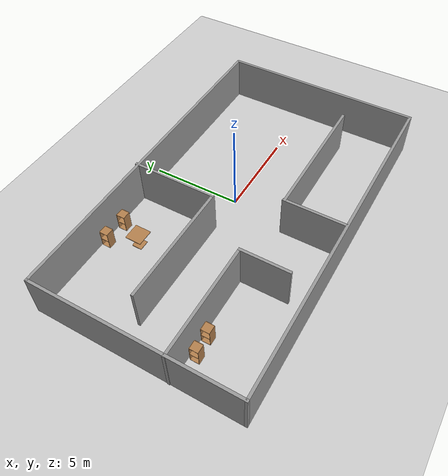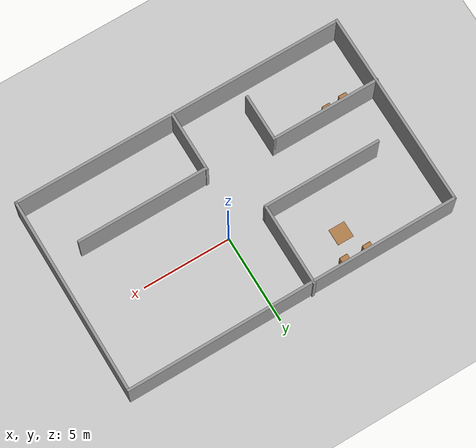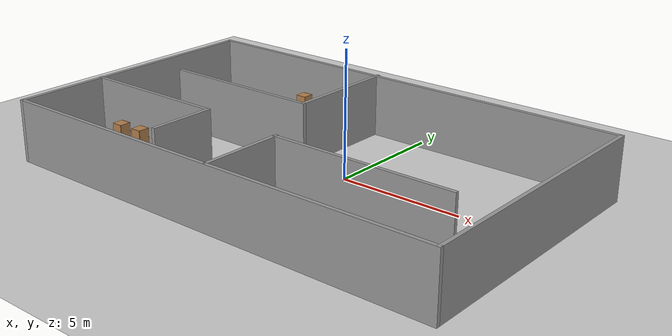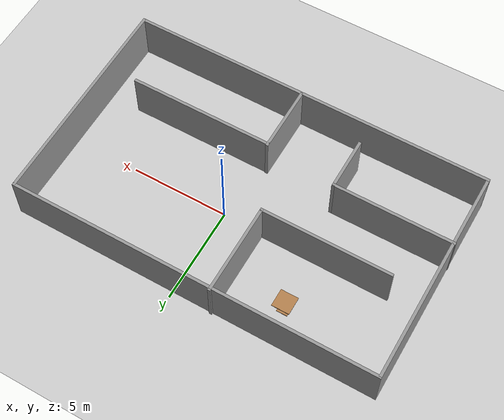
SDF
<sdf version="1.7">
 <world name="default">
  <model name="ground_plane">
   <static>1</static>
   <link name="link">
    <collision name="collision">
     <geometry><plane><normal>0 0 1</normal><size>100 100</size></plane></geometry>
     <surface><friction><ode><mu>100</mu><mu2>50</mu2></ode></friction></surface>
    </collision>
    <visual name="visual">
     <geometry><plane><normal>0 0 1</normal><size>100 100</size></plane></geometry>
     <material>
      <script><uri>file://media/materials/scripts/gazebo.material</uri><name>Gazebo/Grey</name></script>
     </material>
    </visual>
   </link>
  </model>
  <model name="room">
   <pose>-0.972666 -0.903877 0 0 -0 0</pose>
   <link name="Wall_66">
    <collision name="Wall_66_Collision">
     <geometry><box><size>19 0.15 2.5</size></box></geometry>
     <pose>0 0 1.25 0 -0 0</pose>
    </collision>
    <visual name="Wall_66_Visual">
     <pose>0 0 1.25 0 -0 0</pose>
     <geometry><box><size>19 0.15 2.5</size></box></geometry>
     <material>
      <script><uri>file://media/materials/scripts/gazebo.material</uri><name>Gazebo/Grey</name></script>
      <ambient>1 1 1 1</ambient>
     </material>
     <meta><layer>0</layer></meta>
    </visual>
    <pose>0.013921 5.50955 0 0 -0 0</pose>
   </link>
   <link name="Wall_67">
    <collision name="Wall_67_Collision">
     <geometry><box><size>11.25 0.15 2.5</size></box></geometry>
     <pose>0 0 1.25 0 -0 0</pose>
    </collision>
    <visual name="Wall_67_Visual">
     <pose>0 0 1.25 0 -0 0</pose>
     <geometry><box><size>11.25 0.15 2.5</size></box></geometry>
     <material>
      <script><uri>file://media/materials/scripts/gazebo.material</uri><name>Gazebo/Grey</name></script>
      <ambient>1 1 1 1</ambient>
     </material>
     <meta><layer>0</layer></meta>
    </visual>
    <pose>9.43892 -0.040455 0 0 -0 -1.5708</pose>
   </link>
   <link name="Wall_68">
    <collision name="Wall_68_Collision">
     <geometry><box><size>19 0.15 2.5</size></box></geometry>
     <pose>0 0 1.25 0 -0 0</pose>
    </collision>
    <visual name="Wall_68_Visual">
     <pose>0 0 1.25 0 -0 0</pose>
     <geometry><box><size>19 0.15 2.5</size></box></geometry>
     <material>
      <script><uri>file://media/materials/scripts/gazebo.material</uri><name>Gazebo/Grey</name></script>
      <ambient>1 1 1 1</ambient>
     </material>
     <meta><layer>0</layer></meta>
    </visual>
    <pose>0.013921 -5.59046 0 0 -0 3.14159</pose>
   </link>
   <link name="Wall_69">
    <collision name="Wall_69_Collision">
     <geometry><box><size>11.25 0.15 2.5</size></box></geometry>
     <pose>0 0 1.25 0 -0 0</pose>
    </collision>
    <visual name="Wall_69_Visual">
     <pose>0 0 1.25 0 -0 0</pose>
     <geometry><box><size>11.25 0.15 2.5</size></box></geometry>
     <material>
      <script><uri>file://media/materials/scripts/gazebo.material</uri><name>Gazebo/Grey</name></script>
      <ambient>1 1 1 1</ambient>
     </material>
     <meta><layer>0</layer></meta>
    </visual>
    <pose>-9.41108 -0.040455 0 0 -0 1.5708</pose>
   </link>
   <link name="Wall_71">
    <collision name="Wall_71_Collision">
     <geometry><box><size>4.75 0.15 2.5</size></box></geometry>
     <pose>0 0 1.25 0 -0 0</pose>
    </collision>
    <visual name="Wall_71_Visual">
     <pose>0 0 1.25 0 -0 0</pose>
     <geometry><box><size>4.75 0.15 2.5</size></box></geometry>
     <material>
      <script><uri>file://media/materials/scripts/gazebo.material</uri><name>Gazebo/Grey</name></script>
      <ambient>1 1 1 1</ambient>
     </material>
     <meta><layer>0</layer></meta>
    </visual>
    <pose>-1.11769 3.29046 0 0 -0 -1.5708</pose>
   </link>
   <link name="Wall_72">
    <collision name="Wall_72_Collision">
     <geometry><box><size>6.75 0.15 2.5</size></box></geometry>
     <pose>0 0 1.25 0 -0 0</pose>
    </collision>
    <visual name="Wall_72_Visual">
     <pose>0 0 1.25 0 -0 0</pose>
     <geometry><box><size>6.75 0.15 2.5</size></box></geometry>
     <material>
      <script><uri>file://media/materials/scripts/gazebo.material</uri><name>Gazebo/Grey</name></script>
      <ambient>1 1 1 1</ambient>
     </material>
     <meta><layer>0</layer></meta>
    </visual>
    <pose>-4.41769 0.990456 0 0 -0 3.14159</pose>
   </link>
   <link name="Wall_79">
    <collision name="Wall_79_Collision">
     <geometry><box><size>3.47722 0.15 2.5</size></box></geometry>
     <pose>0 0 1.25 0 -0 0</pose>
    </collision>
    <visual name="Wall_79_Visual">
     <pose>0 0 1.25 0 -0 0</pose>
     <geometry><box><size>3.47722 0.15 2.5</size></box></geometry>
     <material>
      <script><uri>file://media/materials/scripts/gazebo.material</uri><name>Gazebo/Grey</name></script>
      <ambient>1 1 1 1</ambient>
     </material>
     <meta><layer>0</layer></meta>
    </visual>
    <pose>0.391784 -3.86799 0 0 -0 1.5708</pose>
   </link>
   <link name="Wall_80">
    <collision name="Wall_80_Collision">
     <geometry><box><size>7.5 0.15 2.5</size></box></geometry>
     <pose>0 0 1.25 0 -0 0</pose>
    </collision>
    <visual name="Wall_80_Visual">
     <pose>0 0 1.25 0 -0 0</pose>
     <geometry><box><size>7.5 0.15 2.5</size></box></geometry>
     <material>
      <script><uri>file://media/materials/scripts/gazebo.material</uri><name>Gazebo/Grey</name></script>
      <ambient>1 1 1 1</ambient>
     </material>
     <meta><layer>0</layer></meta>
    </visual>
    <pose>4.06678 -2.24484 0 0 -0 0</pose>
   </link>
   <link name="Wall_85">
    <collision name="Wall_85_Collision">
     <geometry><box><size>6.25 0.15 2.5</size></box></geometry>
     <pose>0 0 1.25 0 -0 0</pose>
    </collision>
    <visual name="Wall_85_Visual">
     <pose>0 0 1.25 0 -0 0</pose>
     <geometry><box><size>6.25 0.15 2.5</size></box></geometry>
     <material>
      <script><uri>file://media/materials/scripts/gazebo.material</uri><name>Gazebo/Grey</name></script>
      <ambient>1 1 1 1</ambient>
     </material>
     <meta><layer>0</layer></meta>
    </visual>
    <pose>-6.38892 -1.80969 0 0 -0 0</pose>
   </link>
   <link name="Wall_86">
    <collision name="Wall_86_Collision">
     <geometry><box><size>2.75 0.15 2.5</size></box></geometry>
     <pose>0 0 1.25 0 -0 0</pose>
    </collision>
    <visual name="Wall_86_Visual">
     <pose>0 0 1.25 0 -0 0</pose>
     <geometry><box><size>2.75 0.15 2.5</size></box></geometry>
     <material>
      <script><uri>file://media/materials/scripts/gazebo.material</uri><name>Gazebo/Grey</name></script>
      <ambient>1 1 1 1</ambient>
     </material>
     <meta><layer>0</layer></meta>
    </visual>
    <pose>-3.33892 -3.10969 0 0 -0 -1.5708</pose>
   </link>
   <static>1</static>
  </model>
  <model name="cabinet">
   <static>1</static>
   <link name="cabinet_bottom_plate">
    <inertial>
     <pose>0 0 -1 0 -0 0</pose>
     <inertia><ixx>2.05</ixx><ixy>0</ixy><ixz>0</ixz><iyy>2.05</iyy><iyz>0</iyz><izz>2.05</izz></inertia>
     <mass>25</mass>
    </inertial>
    <collision name="cabinet_bottom_plate_geom">
     <pose>0 0 0.01 0 -0 0</pose>
     <geometry><box><size>0.45 0.45 0.02</size></box></geometry>
    </collision>
    <visual name="cabinet_bottom_plate_geom_visual">
     <pose>0 0 0.01 0 -0 0</pose>
     <geometry><box><size>0.45 0.45 0.02</size></box></geometry>
     <material>
      <script><uri>file://media/materials/scripts/gazebo.material</uri><name>Gazebo/Wood</name></script>
     </material>
    </visual>
    <collision name="cabinet_bottom_plate_geom_cabinet_back_plate">
     <pose>0.235 0 0.51 0 -0 0</pose>
     <geometry><box><size>0.02 0.45 1.02</size></box></geometry>
    </collision>
    <visual name="cabinet_bottom_plate_geom_cabinet_back_plate_visual">
     <pose>0.235 0 0.51 0 -0 0</pose>
     <geometry><box><size>0.02 0.45 1.02</size></box></geometry>
     <material>
      <script><uri>file://media/materials/scripts/gazebo.material</uri><name>Gazebo/Wood</name></script>
     </material>
    </visual>
    <collision name="cabinet_bottom_plate_geom_cabinet_left_plate">
     <pose>0 0.235 0.51 0 -0 0</pose>
     <geometry><box><size>0.45 0.02 1.02</size></box></geometry>
    </collision>
    <visual name="cabinet_bottom_plate_geom_cabinet_left_plate_visual">
     <pose>0 0.235 0.51 0 -0 0</pose>
     <geometry><box><size>0.45 0.02 1.02</size></box></geometry>
     <material>
      <script><uri>file://media/materials/scripts/gazebo.material</uri><name>Gazebo/Wood</name></script>
     </material>
    </visual>
    <collision name="cabinet_bottom_plate_geom_cabinet_middle_plate">
     <pose>0 0 0.51 0 -0 0</pose>
     <geometry><box><size>0.45 0.45 0.02</size></box></geometry>
    </collision>
    <visual name="cabinet_bottom_plate_geom_cabinet_middle_plate_visual">
     <pose>0 0 0.51 0 -0 0</pose>
     <geometry><box><size>0.45 0.45 0.02</size></box></geometry>
     <material>
      <script><uri>file://media/materials/scripts/gazebo.material</uri><name>Gazebo/Wood</name></script>
     </material>
    </visual>
    <collision name="cabinet_bottom_plate_geom_cabinet_right_plate">
     <pose>0 -0.235 0.51 0 -0 0</pose>
     <geometry><box><size>0.45 0.02 1.02</size></box></geometry>
    </collision>
    <visual name="cabinet_bottom_plate_geom_cabinet_right_plate_visual">
     <pose>0 -0.235 0.51 0 -0 0</pose>
     <geometry><box><size>0.45 0.02 1.02</size></box></geometry>
     <material>
      <script><uri>file://media/materials/scripts/gazebo.material</uri><name>Gazebo/Wood</name></script>
     </material>
    </visual>
    <collision name="cabinet_bottom_plate_geom_cabinet_top_plate">
     <pose>0 0 1.01 0 -0 0</pose>
     <geometry><box><size>0.45 0.45 0.02</size></box></geometry>
    </collision>
    <visual name="cabinet_bottom_plate_geom_cabinet_top_plate_visual">
     <pose>0 0 1.01 0 -0 0</pose>
     <geometry><box><size>0.45 0.45 0.02</size></box></geometry>
     <material>
      <script><uri>file://media/materials/scripts/gazebo.material</uri><name>Gazebo/Wood</name></script>
     </material>
    </visual>
   </link>
   <pose>-4.31975 4.20897 0 0 -0 0</pose>
  </model>
  <model name="cabinet_0">
   <static>1</static>
   <link name="cabinet_bottom_plate">
    <inertial>
     <pose>0 0 -1 0 -0 0</pose>
     <inertia><ixx>2.05</ixx><ixy>0</ixy><ixz>0</ixz><iyy>2.05</iyy><iyz>0</iyz><izz>2.05</izz></inertia>
     <mass>25</mass>
    </inertial>
    <collision name="cabinet_bottom_plate_geom">
     <pose>0 0 0.01 0 -0 0</pose>
     <geometry><box><size>0.45 0.45 0.02</size></box></geometry>
    </collision>
    <visual name="cabinet_bottom_plate_geom_visual">
     <pose>0 0 0.01 0 -0 0</pose>
     <geometry><box><size>0.45 0.45 0.02</size></box></geometry>
     <material>
      <script><uri>file://media/materials/scripts/gazebo.material</uri><name>Gazebo/Wood</name></script>
     </material>
    </visual>
    <collision name="cabinet_bottom_plate_geom_cabinet_back_plate">
     <pose>0.235 0 0.51 0 -0 0</pose>
     <geometry><box><size>0.02 0.45 1.02</size></box></geometry>
    </collision>
    <visual name="cabinet_bottom_plate_geom_cabinet_back_plate_visual">
     <pose>0.235 0 0.51 0 -0 0</pose>
     <geometry><box><size>0.02 0.45 1.02</size></box></geometry>
     <material>
      <script><uri>file://media/materials/scripts/gazebo.material</uri><name>Gazebo/Wood</name></script>
     </material>
    </visual>
    <collision name="cabinet_bottom_plate_geom_cabinet_left_plate">
     <pose>0 0.235 0.51 0 -0 0</pose>
     <geometry><box><size>0.45 0.02 1.02</size></box></geometry>
    </collision>
    <visual name="cabinet_bottom_plate_geom_cabinet_left_plate_visual">
     <pose>0 0.235 0.51 0 -0 0</pose>
     <geometry><box><size>0.45 0.02 1.02</size></box></geometry>
     <material>
      <script><uri>file://media/materials/scripts/gazebo.material</uri><name>Gazebo/Wood</name></script>
     </material>
    </visual>
    <collision name="cabinet_bottom_plate_geom_cabinet_middle_plate">
     <pose>0 0 0.51 0 -0 0</pose>
     <geometry><box><size>0.45 0.45 0.02</size></box></geometry>
    </collision>
    <visual name="cabinet_bottom_plate_geom_cabinet_middle_plate_visual">
     <pose>0 0 0.51 0 -0 0</pose>
     <geometry><box><size>0.45 0.45 0.02</size></box></geometry>
     <material>
      <script><uri>file://media/materials/scripts/gazebo.material</uri><name>Gazebo/Wood</name></script>
     </material>
    </visual>
    <collision name="cabinet_bottom_plate_geom_cabinet_right_plate">
     <pose>0 -0.235 0.51 0 -0 0</pose>
     <geometry><box><size>0.45 0.02 1.02</size></box></geometry>
    </collision>
    <visual name="cabinet_bottom_plate_geom_cabinet_right_plate_visual">
     <pose>0 -0.235 0.51 0 -0 0</pose>
     <geometry><box><size>0.45 0.02 1.02</size></box></geometry>
     <material>
      <script><uri>file://media/materials/scripts/gazebo.material</uri><name>Gazebo/Wood</name></script>
     </material>
    </visual>
    <collision name="cabinet_bottom_plate_geom_cabinet_top_plate">
     <pose>0 0 1.01 0 -0 0</pose>
     <geometry><box><size>0.45 0.45 0.02</size></box></geometry>
    </collision>
    <visual name="cabinet_bottom_plate_geom_cabinet_top_plate_visual">
     <pose>0 0 1.01 0 -0 0</pose>
     <geometry><box><size>0.45 0.45 0.02</size></box></geometry>
     <material>
      <script><uri>file://media/materials/scripts/gazebo.material</uri><name>Gazebo/Wood</name></script>
     </material>
    </visual>
   </link>
   <pose>-5.63889 4.25649 0 0 -0 0</pose>
  </model>
  <model name="cabinet_3">
   <static>1</static>
   <link name="cabinet_bottom_plate">
    <inertial>
     <pose>0 0 -1 0 -0 0</pose>
     <inertia><ixx>2.05</ixx><ixy>0</ixy><ixz>0</ixz><iyy>2.05</iyy><iyz>0</iyz><izz>2.05</izz></inertia>
     <mass>25</mass>
    </inertial>
    <collision name="cabinet_bottom_plate_geom">
     <pose>0 0 0.01 0 -0 0</pose>
     <geometry><box><size>0.45 0.45 0.02</size></box></geometry>
    </collision>
    <visual name="cabinet_bottom_plate_geom_visual">
     <pose>0 0 0.01 0 -0 0</pose>
     <geometry><box><size>0.45 0.45 0.02</size></box></geometry>
     <material>
      <script><uri>file://media/materials/scripts/gazebo.material</uri><name>Gazebo/Wood</name></script>
     </material>
    </visual>
    <collision name="cabinet_bottom_plate_geom_cabinet_back_plate">
     <pose>0.235 0 0.51 0 -0 0</pose>
     <geometry><box><size>0.02 0.45 1.02</size></box></geometry>
    </collision>
    <visual name="cabinet_bottom_plate_geom_cabinet_back_plate_visual">
     <pose>0.235 0 0.51 0 -0 0</pose>
     <geometry><box><size>0.02 0.45 1.02</size></box></geometry>
     <material>
      <script><uri>file://media/materials/scripts/gazebo.material</uri><name>Gazebo/Wood</name></script>
     </material>
    </visual>
    <collision name="cabinet_bottom_plate_geom_cabinet_left_plate">
     <pose>0 0.235 0.51 0 -0 0</pose>
     <geometry><box><size>0.45 0.02 1.02</size></box></geometry>
    </collision>
    <visual name="cabinet_bottom_plate_geom_cabinet_left_plate_visual">
     <pose>0 0.235 0.51 0 -0 0</pose>
     <geometry><box><size>0.45 0.02 1.02</size></box></geometry>
     <material>
      <script><uri>file://media/materials/scripts/gazebo.material</uri><name>Gazebo/Wood</name></script>
     </material>
    </visual>
    <collision name="cabinet_bottom_plate_geom_cabinet_middle_plate">
     <pose>0 0 0.51 0 -0 0</pose>
     <geometry><box><size>0.45 0.45 0.02</size></box></geometry>
    </collision>
    <visual name="cabinet_bottom_plate_geom_cabinet_middle_plate_visual">
     <pose>0 0 0.51 0 -0 0</pose>
     <geometry><box><size>0.45 0.45 0.02</size></box></geometry>
     <material>
      <script><uri>file://media/materials/scripts/gazebo.material</uri><name>Gazebo/Wood</name></script>
     </material>
    </visual>
    <collision name="cabinet_bottom_plate_geom_cabinet_right_plate">
     <pose>0 -0.235 0.51 0 -0 0</pose>
     <geometry><box><size>0.45 0.02 1.02</size></box></geometry>
    </collision>
    <visual name="cabinet_bottom_plate_geom_cabinet_right_plate_visual">
     <pose>0 -0.235 0.51 0 -0 0</pose>
     <geometry><box><size>0.45 0.02 1.02</size></box></geometry>
     <material>
      <script><uri>file://media/materials/scripts/gazebo.material</uri><name>Gazebo/Wood</name></script>
     </material>
    </visual>
    <collision name="cabinet_bottom_plate_geom_cabinet_top_plate">
     <pose>0 0 1.01 0 -0 0</pose>
     <geometry><box><size>0.45 0.45 0.02</size></box></geometry>
    </collision>
    <visual name="cabinet_bottom_plate_geom_cabinet_top_plate_visual">
     <pose>0 0 1.01 0 -0 0</pose>
     <geometry><box><size>0.45 0.45 0.02</size></box></geometry>
     <material>
      <script><uri>file://media/materials/scripts/gazebo.material</uri><name>Gazebo/Wood</name></script>
     </material>
    </visual>
   </link>
   <pose>-8.8359 -3.13197 0 0 -0 0</pose>
  </model>
  <model name="cabinet_4">
   <static>1</static>
   <link name="cabinet_bottom_plate">
    <inertial>
     <pose>0 0 -1 0 -0 0</pose>
     <inertia><ixx>2.05</ixx><ixy>0</ixy><ixz>0</ixz><iyy>2.05</iyy><iyz>0</iyz><izz>2.05</izz></inertia>
     <mass>25</mass>
    </inertial>
    <collision name="cabinet_bottom_plate_geom">
     <pose>0 0 0.01 0 -0 0</pose>
     <geometry><box><size>0.45 0.45 0.02</size></box></geometry>
    </collision>
    <visual name="cabinet_bottom_plate_geom_visual">
     <pose>0 0 0.01 0 -0 0</pose>
     <geometry><box><size>0.45 0.45 0.02</size></box></geometry>
     <material>
      <script><uri>file://media/materials/scripts/gazebo.material</uri><name>Gazebo/Wood</name></script>
     </material>
    </visual>
    <collision name="cabinet_bottom_plate_geom_cabinet_back_plate">
     <pose>0.235 0 0.51 0 -0 0</pose>
     <geometry><box><size>0.02 0.45 1.02</size></box></geometry>
    </collision>
    <visual name="cabinet_bottom_plate_geom_cabinet_back_plate_visual">
     <pose>0.235 0 0.51 0 -0 0</pose>
     <geometry><box><size>0.02 0.45 1.02</size></box></geometry>
     <material>
      <script><uri>file://media/materials/scripts/gazebo.material</uri><name>Gazebo/Wood</name></script>
     </material>
    </visual>
    <collision name="cabinet_bottom_plate_geom_cabinet_left_plate">
     <pose>0 0.235 0.51 0 -0 0</pose>
     <geometry><box><size>0.45 0.02 1.02</size></box></geometry>
    </collision>
    <visual name="cabinet_bottom_plate_geom_cabinet_left_plate_visual">
     <pose>0 0.235 0.51 0 -0 0</pose>
     <geometry><box><size>0.45 0.02 1.02</size></box></geometry>
     <material>
      <script><uri>file://media/materials/scripts/gazebo.material</uri><name>Gazebo/Wood</name></script>
     </material>
    </visual>
    <collision name="cabinet_bottom_plate_geom_cabinet_middle_plate">
     <pose>0 0 0.51 0 -0 0</pose>
     <geometry><box><size>0.45 0.45 0.02</size></box></geometry>
    </collision>
    <visual name="cabinet_bottom_plate_geom_cabinet_middle_plate_visual">
     <pose>0 0 0.51 0 -0 0</pose>
     <geometry><box><size>0.45 0.45 0.02</size></box></geometry>
     <material>
      <script><uri>file://media/materials/scripts/gazebo.material</uri><name>Gazebo/Wood</name></script>
     </material>
    </visual>
    <collision name="cabinet_bottom_plate_geom_cabinet_right_plate">
     <pose>0 -0.235 0.51 0 -0 0</pose>
     <geometry><box><size>0.45 0.02 1.02</size></box></geometry>
    </collision>
    <visual name="cabinet_bottom_plate_geom_cabinet_right_plate_visual">
     <pose>0 -0.235 0.51 0 -0 0</pose>
     <geometry><box><size>0.45 0.02 1.02</size></box></geometry>
     <material>
      <script><uri>file://media/materials/scripts/gazebo.material</uri><name>Gazebo/Wood</name></script>
     </material>
    </visual>
    <collision name="cabinet_bottom_plate_geom_cabinet_top_plate">
     <pose>0 0 1.01 0 -0 0</pose>
     <geometry><box><size>0.45 0.45 0.02</size></box></geometry>
    </collision>
    <visual name="cabinet_bottom_plate_geom_cabinet_top_plate_visual">
     <pose>0 0 1.01 0 -0 0</pose>
     <geometry><box><size>0.45 0.45 0.02</size></box></geometry>
     <material>
      <script><uri>file://media/materials/scripts/gazebo.material</uri><name>Gazebo/Wood</name></script>
     </material>
    </visual>
   </link>
   <pose>-7.80202 -3.07286 0 0 -0 0</pose>
  </model>
  <model name="cafe_table">
   <static>1</static>
   <link name="link">
    <collision name="surface">
     <pose>0 0 0.755 0 -0 0</pose>
     <geometry><box><size>0.913 0.913 0.04</size></box></geometry>
    </collision>
    <collision name="column">
     <pose>0 0 0.37 0 -0 0</pose>
     <geometry><box><size>0.042 0.042 0.74</size></box></geometry>
    </collision>
    <collision name="base">
     <pose>0 0 0.02 0 -0 0</pose>
     <geometry><box><size>0.56 0.56 0.04</size></box></geometry>
    </collision>
    <visual name="visual">
     <geometry><box><size>0.913 0.913 0.04</size></box></geometry>
     <pose>0 0 0.755 0 -0 0</pose>
     <material>
      <script><uri>file://media/materials/scripts/gazebo.material</uri><name>Gazebo/Wood</name></script>
     </material>
    </visual>
    <visual name="visual_column">
     <geometry><box><size>0.042 0.042 0.74</size></box></geometry>
     <pose>0 0 0.37 0 -0 0</pose>
     <material>
      <script><uri>file://media/materials/scripts/gazebo.material</uri><name>Gazebo/Wood</name></script>
     </material>
    </visual>
    <visual name="visual_base">
     <geometry><box><size>0.56 0.56 0.04</size></box></geometry>
     <pose>0 0 0.02 0 -0 0</pose>
     <material>
      <script><uri>file://media/materials/scripts/gazebo.material</uri><name>Gazebo/Wood</name></script>
     </material>
    </visual>
   </link>
   <pose>-4.89593 2.8545 0 0 -0 0</pose>
  </model>
 </world>
</sdf>
